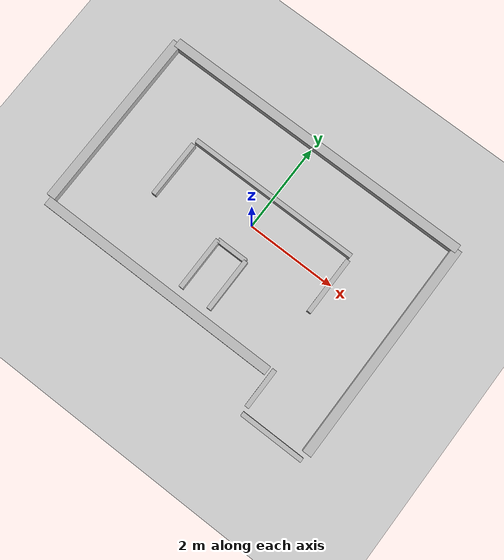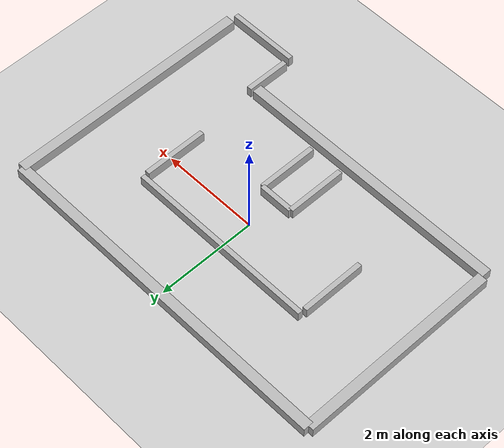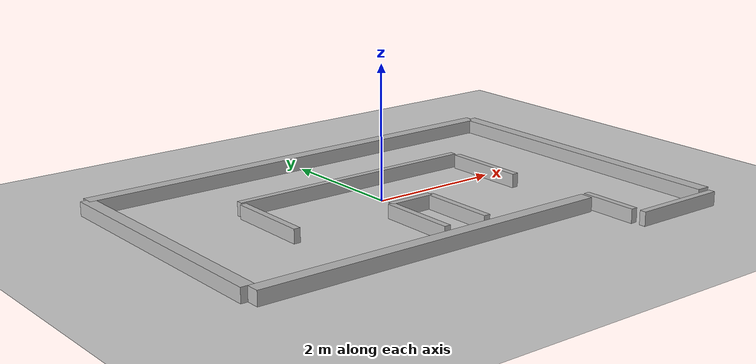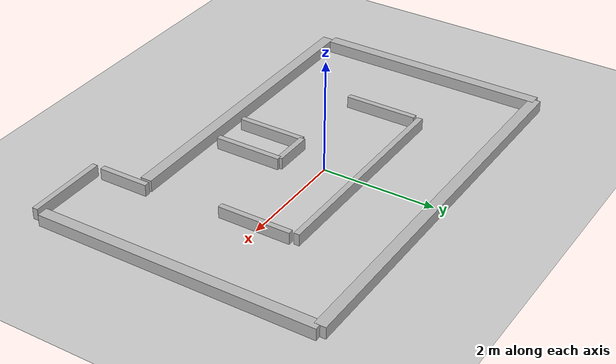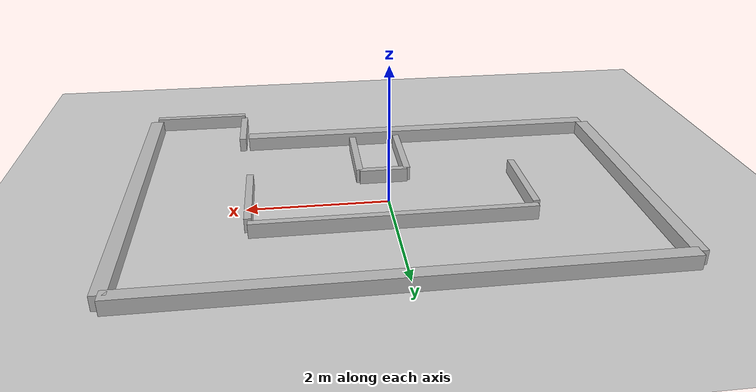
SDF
<?xml version="1.0" ?>
<sdf version="1.4">

	<world name="default">

		<scene>

			<ambient>0.4 0.4 0.4 1</ambient>

			<background>0.7 0.7 0.7 1</background>

			<shadows>true</shadows>

		</scene>

		<!-- A global light source -->

		<include>

			<uri>model://sun</uri>

		</include>

		<!-- A ground plane -->

		<include>

			<uri>model://ground_plane</uri>

		</include>

		<physics type="ode">

			<real_time_update_rate>1000.0</real_time_update_rate>

			<max_step_size>0.001</max_step_size>

			<real_time_factor>1</real_time_factor>

			<ode>

				<solver>

					<type>quick</type>

					<iters>150</iters>

					<precon_iters>0</precon_iters>

					<sor>1.400000</sor>

					<use_dynamic_moi_rescaling>1</use_dynamic_moi_rescaling>

				</solver>

				<constraints>

					<cfm>0.00001</cfm>

					<erp>0.2</erp>

					<contact_max_correcting_vel>2000.000000</contact_max_correcting_vel>

					<contact_surface_layer>0.01000</contact_surface_layer>

				</constraints>

			</ode>

		</physics>

		<model name="line-0">
			<pose>0.0 2.0999999999999996 0.0 0.0 0.0 0.0 </pose>
			<link name="link-line-0">
				<collision name="collision-line-0">
					<geometry>
						<box>
							<size>7.1 0.2 0.4 </size>
						</box>
					</geometry>
				</collision>
				<visual name="visual-line-0">
					<geometry>
						<box>
							<size>7.1 0.2 0.4 </size>
						</box>
					</geometry>
				</visual>
			</link>
		</model>
		<model name="line-1">
			<pose>-3.5500000000000003 0.04999999999999982 0.0 0.0 0.0 1.5707963267948966 </pose>
			<link name="link-line-1">
				<collision name="collision-line-1">
					<geometry>
						<box>
							<size>4.1 0.2 0.4 </size>
						</box>
					</geometry>
				</collision>
				<visual name="visual-line-1">
					<geometry>
						<box>
							<size>4.1 0.2 0.4 </size>
						</box>
					</geometry>
				</visual>
			</link>
		</model>
		<model name="line-2">
			<pose>3.55 -0.40000000000000036 0.0 0.0 0.0 1.5707963267948966 </pose>
			<link name="link-line-2">
				<collision name="collision-line-2">
					<geometry>
						<box>
							<size>5.0 0.2 0.4 </size>
						</box>
					</geometry>
				</collision>
				<visual name="visual-line-2">
					<geometry>
						<box>
							<size>5.0 0.2 0.4 </size>
						</box>
					</geometry>
				</visual>
			</link>
		</model>
		<model name="line-3">
			<pose>-0.7750000000000004 -2.0999999999999996 0.0 0.0 0.0 0.0 </pose>
			<link name="link-line-3">
				<collision name="collision-line-3">
					<geometry>
						<box>
							<size>5.550000000000001 0.2 0.4 </size>
						</box>
					</geometry>
				</collision>
				<visual name="visual-line-3">
					<geometry>
						<box>
							<size>5.550000000000001 0.2 0.4 </size>
						</box>
					</geometry>
				</visual>
			</link>
		</model>
		<model name="line-4">
			<pose>0.0 0.7000000000000002 0.0 0.0 0.0 0.0 </pose>
			<link name="link-line-4">
				<collision name="collision-line-4">
					<geometry>
						<box>
							<size>3.9000000000000004 0.1 0.4 </size>
						</box>
					</geometry>
				</collision>
				<visual name="visual-line-4">
					<geometry>
						<box>
							<size>3.9000000000000004 0.1 0.4 </size>
						</box>
					</geometry>
				</visual>
			</link>
		</model>
		<model name="line-5">
			<pose>-1.9500000000000002 -0.050000000000000266 0.0 0.0 0.0 1.5707963267948966 </pose>
			<link name="link-line-5">
				<collision name="collision-line-5">
					<geometry>
						<box>
							<size>1.2999999999999998 0.1 0.4 </size>
						</box>
					</geometry>
				</collision>
				<visual name="visual-line-5">
					<geometry>
						<box>
							<size>1.2999999999999998 0.1 0.4 </size>
						</box>
					</geometry>
				</visual>
			</link>
		</model>
		<model name="line-6">
			<pose>1.9500000000000002 -0.050000000000000266 0.0 0.0 0.0 1.5707963267948966 </pose>
			<link name="link-line-6">
				<collision name="collision-line-6">
					<geometry>
						<box>
							<size>1.2999999999999998 0.1 0.4 </size>
						</box>
					</geometry>
				</collision>
				<visual name="visual-line-6">
					<geometry>
						<box>
							<size>1.2999999999999998 0.1 0.4 </size>
						</box>
					</geometry>
				</visual>
			</link>
		</model>
		<model name="line-7">
			<pose>-8.881784197001252e-16 -0.6500000000000004 0.0 0.0 0.0 0.0 </pose>
			<link name="link-line-7">
				<collision name="collision-line-7">
					<geometry>
						<box>
							<size>0.7000000000000002 0.1 0.4 </size>
						</box>
					</geometry>
				</collision>
				<visual name="visual-line-7">
					<geometry>
						<box>
							<size>0.7000000000000002 0.1 0.4 </size>
						</box>
					</geometry>
				</visual>
			</link>
		</model>
		<model name="line-8">
			<pose>-0.35000000000000053 -1.25 0.0 0.0 0.0 1.5707963267948966 </pose>
			<link name="link-line-8">
				<collision name="collision-line-8">
					<geometry>
						<box>
							<size>1.1999999999999993 0.1 0.4 </size>
						</box>
					</geometry>
				</collision>
				<visual name="visual-line-8">
					<geometry>
						<box>
							<size>1.1999999999999993 0.1 0.4 </size>
						</box>
					</geometry>
				</visual>
			</link>
		</model>
		<model name="line-9">
			<pose>0.34999999999999964 -1.25 0.0 0.0 0.0 1.5707963267948966 </pose>
			<link name="link-line-9">
				<collision name="collision-line-9">
					<geometry>
						<box>
							<size>1.1999999999999993 0.1 0.4 </size>
						</box>
					</geometry>
				</collision>
				<visual name="visual-line-9">
					<geometry>
						<box>
							<size>1.1999999999999993 0.1 0.4 </size>
						</box>
					</geometry>
				</visual>
			</link>
		</model>
		<model name="line-10">
			<pose>2.0999999999999996 -2.45 0.0 0.0 0.0 1.5707963267948966 </pose>
			<link name="link-line-10">
				<collision name="collision-line-10">
					<geometry>
						<box>
							<size>0.9000000000000004 0.1 0.4 </size>
						</box>
					</geometry>
				</collision>
				<visual name="visual-line-10">
					<geometry>
						<box>
							<size>0.9000000000000004 0.1 0.4 </size>
						</box>
					</geometry>
				</visual>
			</link>
		</model>
		<model name="line-11">
			<pose>2.825 -3.05 0.0 0.0 0.0 0.0 </pose>
			<link name="link-line-11">
				<collision name="collision-line-11">
					<geometry>
						<box>
							<size>1.4500000000000002 0.1 0.4 </size>
						</box>
					</geometry>
				</collision>
				<visual name="visual-line-11">
					<geometry>
						<box>
							<size>1.4500000000000002 0.1 0.4 </size>
						</box>
					</geometry>
				</visual>
			</link>
		</model>
	</world>

</sdf>
